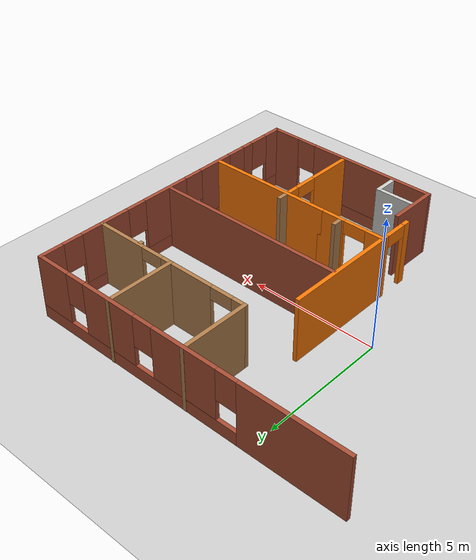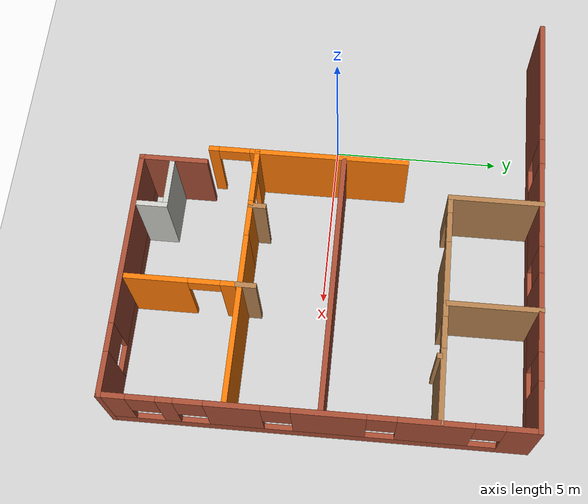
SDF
<sdf version="1.6">
 <world name="default">
  <model name="ground_plane">
   <static>1</static>
   <link name="link">
    <collision name="collision">
     <geometry><plane><normal>0 0 1</normal><size>100 100</size></plane></geometry>
     <surface><friction><ode><mu>100</mu><mu2>50</mu2></ode></friction></surface>
    </collision>
    <visual name="visual">
     <cast_shadows>0</cast_shadows>
     <geometry><plane><normal>0 0 1</normal><size>100 100</size></plane></geometry>
     <material>
      <script><uri>file://media/materials/scripts/gazebo.material</uri><name>Gazebo/Grey</name></script>
     </material>
    </visual>
   </link>
  </model>
  <model name="office">
   <pose>0.904802 0.213699 0 0 -0 0</pose>
   <link name="Wall_14">
    <pose>1.80043 5.84251 0 0 -0 0</pose>
    <visual name="Wall_14_Visual_0">
     <pose>-4.36709 0 1.25 0 -0 0</pose>
     <geometry><box><size>4.01582 0.15 2.5</size></box></geometry>
     <material>
      <script><uri>file://media/materials/scripts/gazebo.material</uri><name>Gazebo/Bricks</name></script>
      <ambient>1 1 1 1</ambient>
     </material>
     <meta><layer>0</layer></meta>
    </visual>
    <collision name="Wall_14_Collision_0">
     <geometry><box><size>4.01582 0.15 2.5</size></box></geometry>
     <pose>-4.36709 0 1.25 0 -0 0</pose>
    </collision>
    <visual name="Wall_14_Visual_1">
     <pose>2.00791 0 0.25 0 -0 0</pose>
     <geometry><box><size>8.73418 0.15 0.5</size></box></geometry>
     <material>
      <script><uri>file://media/materials/scripts/gazebo.material</uri><name>Gazebo/Bricks</name></script>
      <ambient>1 1 1 1</ambient>
     </material>
     <meta><layer>0</layer></meta>
    </visual>
    <collision name="Wall_14_Collision_1">
     <geometry><box><size>8.73418 0.15 0.5</size></box></geometry>
     <pose>2.00791 0 0.25 0 -0 0</pose>
    </collision>
    <visual name="Wall_14_Visual_2">
     <pose>-0.245155 0 1.5 0 -0 0</pose>
     <geometry><box><size>2.62805 0.15 2</size></box></geometry>
     <material>
      <script><uri>file://media/materials/scripts/gazebo.material</uri><name>Gazebo/Bricks</name></script>
      <ambient>1 1 1 1</ambient>
     </material>
     <meta><layer>0</layer></meta>
    </visual>
    <collision name="Wall_14_Collision_2">
     <geometry><box><size>2.62805 0.15 2</size></box></geometry>
     <pose>-0.245155 0 1.5 0 -0 0</pose>
    </collision>
    <visual name="Wall_14_Visual_3">
     <pose>3.008 0 1.5 0 -0 0</pose>
     <geometry><box><size>2.27825 0.15 2</size></box></geometry>
     <material>
      <script><uri>file://media/materials/scripts/gazebo.material</uri><name>Gazebo/Bricks</name></script>
      <ambient>1 1 1 1</ambient>
     </material>
     <meta><layer>0</layer></meta>
    </visual>
    <collision name="Wall_14_Collision_3">
     <geometry><box><size>2.27825 0.15 2</size></box></geometry>
     <pose>3.008 0 1.5 0 -0 0</pose>
    </collision>
    <visual name="Wall_14_Visual_4">
     <pose>5.66106 0 1.5 0 -0 0</pose>
     <geometry><box><size>1.42788 0.15 2</size></box></geometry>
     <material>
      <script><uri>file://media/materials/scripts/gazebo.material</uri><name>Gazebo/Bricks</name></script>
      <ambient>1 1 1 1</ambient>
     </material>
     <meta><layer>0</layer></meta>
    </visual>
    <collision name="Wall_14_Collision_4">
     <geometry><box><size>1.42788 0.15 2</size></box></geometry>
     <pose>5.66106 0 1.5 0 -0 0</pose>
    </collision>
    <visual name="Wall_14_Visual_5">
     <pose>-1.95918 0 1.9 0 -0 0</pose>
     <geometry><box><size>0.8 0.15 1.2</size></box></geometry>
     <material>
      <script><uri>file://media/materials/scripts/gazebo.material</uri><name>Gazebo/Bricks</name></script>
      <ambient>1 1 1 1</ambient>
     </material>
     <meta><layer>0</layer></meta>
    </visual>
    <collision name="Wall_14_Collision_5">
     <geometry><box><size>0.8 0.15 1.2</size></box></geometry>
     <pose>-1.95918 0 1.9 0 -0 0</pose>
    </collision>
    <visual name="Wall_14_Visual_6">
     <pose>1.46887 0 1.9 0 -0 0</pose>
     <geometry><box><size>0.8 0.15 1.2</size></box></geometry>
     <material>
      <script><uri>file://media/materials/scripts/gazebo.material</uri><name>Gazebo/Bricks</name></script>
      <ambient>1 1 1 1</ambient>
     </material>
     <meta><layer>0</layer></meta>
    </visual>
    <collision name="Wall_14_Collision_6">
     <geometry><box><size>0.8 0.15 1.2</size></box></geometry>
     <pose>1.46887 0 1.9 0 -0 0</pose>
    </collision>
    <visual name="Wall_14_Visual_7">
     <pose>4.54712 0 1.9 0 -0 0</pose>
     <geometry><box><size>0.8 0.15 1.2</size></box></geometry>
     <material>
      <script><uri>file://media/materials/scripts/gazebo.material</uri><name>Gazebo/Bricks</name></script>
      <ambient>1 1 1 1</ambient>
     </material>
     <meta><layer>0</layer></meta>
    </visual>
    <collision name="Wall_14_Collision_7">
     <geometry><box><size>0.8 0.15 1.2</size></box></geometry>
     <pose>4.54712 0 1.9 0 -0 0</pose>
    </collision>
   </link>
   <link name="Wall_15">
    <pose>8.10043 0.042507 0 0 0 -1.5708</pose>
    <visual name="Wall_15_Visual_0">
     <pose>-5.39213 0 1.25 0 -0 0</pose>
     <geometry><box><size>0.965738 0.15 2.5</size></box></geometry>
     <material>
      <script><uri>file://media/materials/scripts/gazebo.material</uri><name>Gazebo/Bricks</name></script>
      <ambient>1 1 1 1</ambient>
     </material>
     <meta><layer>0</layer></meta>
    </visual>
    <collision name="Wall_15_Collision_0">
     <geometry><box><size>0.965738 0.15 2.5</size></box></geometry>
     <pose>-5.39213 0 1.25 0 -0 0</pose>
    </collision>
    <visual name="Wall_15_Visual_1">
     <pose>0.482869 0 0.25 0 -0 0</pose>
     <geometry><box><size>10.7843 0.15 0.5</size></box></geometry>
     <material>
      <script><uri>file://media/materials/scripts/gazebo.material</uri><name>Gazebo/Bricks</name></script>
      <ambient>1 1 1 1</ambient>
     </material>
     <meta><layer>0</layer></meta>
    </visual>
    <collision name="Wall_15_Collision_1">
     <geometry><box><size>10.7843 0.15 0.5</size></box></geometry>
     <pose>0.482869 0 0.25 0 -0 0</pose>
    </collision>
    <visual name="Wall_15_Visual_2">
     <pose>-3.09257 0 1.5 0 -0 0</pose>
     <geometry><box><size>2.03339 0.15 2</size></box></geometry>
     <material>
      <script><uri>file://media/materials/scripts/gazebo.material</uri><name>Gazebo/Bricks</name></script>
      <ambient>1 1 1 1</ambient>
     </material>
     <meta><layer>0</layer></meta>
    </visual>
    <collision name="Wall_15_Collision_2">
     <geometry><box><size>2.03339 0.15 2</size></box></geometry>
     <pose>-3.09257 0 1.5 0 -0 0</pose>
    </collision>
    <visual name="Wall_15_Visual_3">
     <pose>-0.276667 0 1.5 0 -0 0</pose>
     <geometry><box><size>1.99841 0.15 2</size></box></geometry>
     <material>
      <script><uri>file://media/materials/scripts/gazebo.material</uri><name>Gazebo/Bricks</name></script>
      <ambient>1 1 1 1</ambient>
     </material>
     <meta><layer>0</layer></meta>
    </visual>
    <collision name="Wall_15_Collision_3">
     <geometry><box><size>1.99841 0.15 2</size></box></geometry>
     <pose>-0.276667 0 1.5 0 -0 0</pose>
    </collision>
    <visual name="Wall_15_Visual_4">
     <pose>2.27688 0 1.5 0 -0 0</pose>
     <geometry><box><size>1.50869 0.15 2</size></box></geometry>
     <material>
      <script><uri>file://media/materials/scripts/gazebo.material</uri><name>Gazebo/Bricks</name></script>
      <ambient>1 1 1 1</ambient>
     </material>
     <meta><layer>0</layer></meta>
    </visual>
    <collision name="Wall_15_Collision_4">
     <geometry><box><size>1.50869 0.15 2</size></box></geometry>
     <pose>2.27688 0 1.5 0 -0 0</pose>
    </collision>
    <visual name="Wall_15_Visual_5">
     <pose>4.06087 0 1.5 0 -0 0</pose>
     <geometry><box><size>0.459284 0.15 2</size></box></geometry>
     <material>
      <script><uri>file://media/materials/scripts/gazebo.material</uri><name>Gazebo/Bricks</name></script>
      <ambient>1 1 1 1</ambient>
     </material>
     <meta><layer>0</layer></meta>
    </visual>
    <collision name="Wall_15_Collision_5">
     <geometry><box><size>0.459284 0.15 2</size></box></geometry>
     <pose>4.06087 0 1.5 0 -0 0</pose>
    </collision>
    <visual name="Wall_15_Visual_6">
     <pose>5.48276 0 1.5 0 -0 0</pose>
     <geometry><box><size>0.784489 0.15 2</size></box></geometry>
     <material>
      <script><uri>file://media/materials/scripts/gazebo.material</uri><name>Gazebo/Bricks</name></script>
      <ambient>1 1 1 1</ambient>
     </material>
     <meta><layer>0</layer></meta>
    </visual>
    <collision name="Wall_15_Collision_6">
     <geometry><box><size>0.784489 0.15 2</size></box></geometry>
     <pose>5.48276 0 1.5 0 -0 0</pose>
    </collision>
    <visual name="Wall_15_Visual_7">
     <pose>-4.50926 0 1.9 0 -0 0</pose>
     <geometry><box><size>0.8 0.15 1.2</size></box></geometry>
     <material>
      <script><uri>file://media/materials/scripts/gazebo.material</uri><name>Gazebo/Bricks</name></script>
      <ambient>1 1 1 1</ambient>
     </material>
     <meta><layer>0</layer></meta>
    </visual>
    <collision name="Wall_15_Collision_7">
     <geometry><box><size>0.8 0.15 1.2</size></box></geometry>
     <pose>-4.50926 0 1.9 0 -0 0</pose>
    </collision>
    <visual name="Wall_15_Visual_8">
     <pose>-1.67587 0 1.9 0 -0 0</pose>
     <geometry><box><size>0.8 0.15 1.2</size></box></geometry>
     <material>
      <script><uri>file://media/materials/scripts/gazebo.material</uri><name>Gazebo/Bricks</name></script>
      <ambient>1 1 1 1</ambient>
     </material>
     <meta><layer>0</layer></meta>
    </visual>
    <collision name="Wall_15_Collision_8">
     <geometry><box><size>0.8 0.15 1.2</size></box></geometry>
     <pose>-1.67587 0 1.9 0 -0 0</pose>
    </collision>
    <visual name="Wall_15_Visual_9">
     <pose>1.12254 0 1.9 0 -0 0</pose>
     <geometry><box><size>0.8 0.15 1.2</size></box></geometry>
     <material>
      <script><uri>file://media/materials/scripts/gazebo.material</uri><name>Gazebo/Bricks</name></script>
      <ambient>1 1 1 1</ambient>
     </material>
     <meta><layer>0</layer></meta>
    </visual>
    <collision name="Wall_15_Collision_9">
     <geometry><box><size>0.8 0.15 1.2</size></box></geometry>
     <pose>1.12254 0 1.9 0 -0 0</pose>
    </collision>
    <visual name="Wall_15_Visual_10">
     <pose>3.43123 0 1.9 0 -0 0</pose>
     <geometry><box><size>0.8 0.15 1.2</size></box></geometry>
     <material>
      <script><uri>file://media/materials/scripts/gazebo.material</uri><name>Gazebo/Bricks</name></script>
      <ambient>1 1 1 1</ambient>
     </material>
     <meta><layer>0</layer></meta>
    </visual>
    <collision name="Wall_15_Collision_10">
     <geometry><box><size>0.8 0.15 1.2</size></box></geometry>
     <pose>3.43123 0 1.9 0 -0 0</pose>
    </collision>
    <visual name="Wall_15_Visual_11">
     <pose>4.69051 0 1.9 0 -0 0</pose>
     <geometry><box><size>0.8 0.15 1.2</size></box></geometry>
     <material>
      <script><uri>file://media/materials/scripts/gazebo.material</uri><name>Gazebo/Bricks</name></script>
      <ambient>1 1 1 1</ambient>
     </material>
     <meta><layer>0</layer></meta>
    </visual>
    <collision name="Wall_15_Collision_11">
     <geometry><box><size>0.8 0.15 1.2</size></box></geometry>
     <pose>4.69051 0 1.9 0 -0 0</pose>
    </collision>
   </link>
   <link name="Wall_21">
    <pose>4.55043 -5.75749 0 0 -0 3.14159</pose>
    <visual name="Wall_21_Visual_0">
     <pose>-2.99851 0 1.25 0 -0 0</pose>
     <geometry><box><size>1.25298 0.15 2.5</size></box></geometry>
     <material>
      <script><uri>file://media/materials/scripts/gazebo.material</uri><name>Gazebo/Bricks</name></script>
      <ambient>1 1 1 1</ambient>
     </material>
     <meta><layer>0</layer></meta>
    </visual>
    <collision name="Wall_21_Collision_0">
     <geometry><box><size>1.25298 0.15 2.5</size></box></geometry>
     <pose>-2.99851 0 1.25 0 -0 0</pose>
    </collision>
    <visual name="Wall_21_Visual_1">
     <pose>0.626488 0 0.25 0 -0 0</pose>
     <geometry><box><size>5.99702 0.15 0.5</size></box></geometry>
     <material>
      <script><uri>file://media/materials/scripts/gazebo.material</uri><name>Gazebo/Bricks</name></script>
      <ambient>1 1 1 1</ambient>
     </material>
     <meta><layer>0</layer></meta>
    </visual>
    <collision name="Wall_21_Collision_1">
     <geometry><box><size>5.99702 0.15 0.5</size></box></geometry>
     <pose>0.626488 0 0.25 0 -0 0</pose>
    </collision>
    <visual name="Wall_21_Visual_2">
     <pose>1.02649 0 1.5 0 -0 0</pose>
     <geometry><box><size>5.19702 0.15 2</size></box></geometry>
     <material>
      <script><uri>file://media/materials/scripts/gazebo.material</uri><name>Gazebo/Bricks</name></script>
      <ambient>1 1 1 1</ambient>
     </material>
     <meta><layer>0</layer></meta>
    </visual>
    <collision name="Wall_21_Collision_2">
     <geometry><box><size>5.19702 0.15 2</size></box></geometry>
     <pose>1.02649 0 1.5 0 -0 0</pose>
    </collision>
    <visual name="Wall_21_Visual_3">
     <pose>-1.97202 0 1.9 0 -0 0</pose>
     <geometry><box><size>0.8 0.15 1.2</size></box></geometry>
     <material>
      <script><uri>file://media/materials/scripts/gazebo.material</uri><name>Gazebo/Bricks</name></script>
      <ambient>1 1 1 1</ambient>
     </material>
     <meta><layer>0</layer></meta>
    </visual>
    <collision name="Wall_21_Collision_3">
     <geometry><box><size>0.8 0.15 1.2</size></box></geometry>
     <pose>-1.97202 0 1.9 0 -0 0</pose>
    </collision>
   </link>
   <link name="Wall_22">
    <collision name="Wall_22_Collision">
     <geometry><box><size>2 0.15 2.5</size></box></geometry>
     <pose>0 0 1.25 0 -0 0</pose>
    </collision>
    <visual name="Wall_22_Visual">
     <pose>0 0 1.25 0 -0 0</pose>
     <geometry><box><size>2 0.15 2.5</size></box></geometry>
     <material>
      <script><uri>file://media/materials/scripts/gazebo.material</uri><name>Gazebo/Bricks</name></script>
      <ambient>1 1 1 1</ambient>
     </material>
     <meta><layer>0</layer></meta>
    </visual>
    <pose>1.00043 -4.83249 0 0 -0 1.5708</pose>
   </link>
   <link name="Wall_34">
    <collision name="Wall_34_Collision">
     <geometry><box><size>4.5 0.15 2.5</size></box></geometry>
     <pose>0 0 1.25 0 -0 0</pose>
    </collision>
    <visual name="Wall_34_Visual">
     <pose>0 0 1.25 0 -0 0</pose>
     <geometry><box><size>4.5 0.15 2.5</size></box></geometry>
     <material>
      <script><uri>file://media/materials/scripts/gazebo.material</uri><name>Gazebo/Grey</name></script>
      <ambient>0.996078 0.47451 0.0196078 1</ambient>
     </material>
     <meta><layer>0</layer></meta>
    </visual>
    <pose>0.554111 -0.259019 0 0 -0 1.57084</pose>
   </link>
   <link name="Wall_39">
    <pose>1.85421 -2.43396 0 0 -0 0</pose>
    <visual name="Wall_39_Visual_0">
     <pose>-0.992004 0 1.25 0 -0 0</pose>
     <geometry><box><size>0.765991 0.15 2.5</size></box></geometry>
     <material>
      <script><uri>file://media/materials/scripts/gazebo.material</uri><name>Gazebo/Grey</name></script>
      <ambient>0.996078 0.47451 0.0196078 1</ambient>
     </material>
     <meta><layer>0</layer></meta>
    </visual>
    <collision name="Wall_39_Collision_0">
     <geometry><box><size>0.765991 0.15 2.5</size></box></geometry>
     <pose>-0.992004 0 1.25 0 -0 0</pose>
    </collision>
    <visual name="Wall_39_Visual_1">
     <pose>0.832996 0 1.25 0 -0 0</pose>
     <geometry><box><size>1.08401 0.15 2.5</size></box></geometry>
     <material>
      <script><uri>file://media/materials/scripts/gazebo.material</uri><name>Gazebo/Grey</name></script>
      <ambient>0.996078 0.47451 0.0196078 1</ambient>
     </material>
     <meta><layer>0</layer></meta>
    </visual>
    <collision name="Wall_39_Collision_1">
     <geometry><box><size>1.08401 0.15 2.5</size></box></geometry>
     <pose>0.832996 0 1.25 0 -0 0</pose>
    </collision>
    <visual name="Wall_39_Visual_2">
     <pose>-0.159009 0 2.25 0 -0 0</pose>
     <geometry><box><size>0.9 0.15 0.5</size></box></geometry>
     <material>
      <script><uri>file://media/materials/scripts/gazebo.material</uri><name>Gazebo/Grey</name></script>
      <ambient>0.996078 0.47451 0.0196078 1</ambient>
     </material>
     <meta><layer>0</layer></meta>
    </visual>
    <collision name="Wall_39_Collision_2">
     <geometry><box><size>0.9 0.15 0.5</size></box></geometry>
     <pose>-0.159009 0 2.25 0 -0 0</pose>
    </collision>
   </link>
   <link name="Wall_40">
    <collision name="Wall_40_Collision">
     <geometry><box><size>5 0.15 2.5</size></box></geometry>
     <pose>0 0 1.25 0 -0 0</pose>
    </collision>
    <visual name="Wall_40_Visual">
     <pose>0 0 1.25 0 -0 0</pose>
     <geometry><box><size>5 0.15 2.5</size></box></geometry>
     <material>
      <script><uri>file://media/materials/scripts/gazebo.material</uri><name>Gazebo/Grey</name></script>
      <ambient>0.996078 0.47451 0.0196078 1</ambient>
     </material>
     <meta><layer>0</layer></meta>
    </visual>
    <pose>5.5792 -2.43396 0 0 -0 0</pose>
   </link>
   <link name="Wall_42">
    <pose>4.72121 -4.04494 0 0 0 -1.57067</pose>
    <visual name="Wall_42_Visual_0">
     <pose>-1.34812 0 1.25 0 -0 0</pose>
     <geometry><box><size>0.553762 0.15 2.5</size></box></geometry>
     <material>
      <script><uri>file://media/materials/scripts/gazebo.material</uri><name>Gazebo/Grey</name></script>
      <ambient>0.996078 0.47451 0.0196078 1</ambient>
     </material>
     <meta><layer>0</layer></meta>
    </visual>
    <collision name="Wall_42_Collision_0">
     <geometry><box><size>0.553762 0.15 2.5</size></box></geometry>
     <pose>-1.34812 0 1.25 0 -0 0</pose>
    </collision>
    <visual name="Wall_42_Visual_1">
     <pose>0.726881 0 1.25 0 -0 0</pose>
     <geometry><box><size>1.79624 0.15 2.5</size></box></geometry>
     <material>
      <script><uri>file://media/materials/scripts/gazebo.material</uri><name>Gazebo/Grey</name></script>
      <ambient>0.996078 0.47451 0.0196078 1</ambient>
     </material>
     <meta><layer>0</layer></meta>
    </visual>
    <collision name="Wall_42_Collision_1">
     <geometry><box><size>1.79624 0.15 2.5</size></box></geometry>
     <pose>0.726881 0 1.25 0 -0 0</pose>
    </collision>
    <visual name="Wall_42_Visual_2">
     <pose>-0.621238 0 2.25 0 -0 0</pose>
     <geometry><box><size>0.9 0.15 0.5</size></box></geometry>
     <material>
      <script><uri>file://media/materials/scripts/gazebo.material</uri><name>Gazebo/Grey</name></script>
      <ambient>0.996078 0.47451 0.0196078 1</ambient>
     </material>
     <meta><layer>0</layer></meta>
    </visual>
    <collision name="Wall_42_Collision_2">
     <geometry><box><size>0.9 0.15 0.5</size></box></geometry>
     <pose>-0.621238 0 2.25 0 -0 0</pose>
    </collision>
   </link>
   <link name="Wall_44">
    <collision name="Wall_44_Collision">
     <geometry><box><size>7.5 0.15 2.5</size></box></geometry>
     <pose>0 0 1.25 0 -0 0</pose>
    </collision>
    <visual name="Wall_44_Visual">
     <pose>0 0 1.25 0 -0 0</pose>
     <geometry><box><size>7.5 0.15 2.5</size></box></geometry>
     <material>
      <script><uri>file://media/materials/scripts/gazebo.material</uri><name>Gazebo/Bricks</name></script>
      <ambient>0.996078 0.47451 0.0196078 1</ambient>
     </material>
     <meta><layer>0</layer></meta>
    </visual>
    <pose>4.32079 0.109293 0 0 -0 0</pose>
   </link>
   <link name="Wall_48">
    <pose>0.554205 -3.10896 0 0 0 -1.5708</pose>
    <visual name="Wall_48_Visual_0">
     <pose>-0.600039 0 1.25 0 -0 0</pose>
     <geometry><box><size>0.299922 0.15 2.5</size></box></geometry>
     <material>
      <script><uri>file://media/materials/scripts/gazebo.material</uri><name>Gazebo/Grey</name></script>
      <ambient>0.996078 0.47451 0.0196078 1</ambient>
     </material>
     <meta><layer>0</layer></meta>
    </visual>
    <collision name="Wall_48_Collision_0">
     <geometry><box><size>0.299922 0.15 2.5</size></box></geometry>
     <pose>-0.600039 0 1.25 0 -0 0</pose>
    </collision>
    <visual name="Wall_48_Visual_1">
     <pose>0.599961 0 1.25 0 -0 0</pose>
     <geometry><box><size>0.300078 0.15 2.5</size></box></geometry>
     <material>
      <script><uri>file://media/materials/scripts/gazebo.material</uri><name>Gazebo/Grey</name></script>
      <ambient>0.996078 0.47451 0.0196078 1</ambient>
     </material>
     <meta><layer>0</layer></meta>
    </visual>
    <collision name="Wall_48_Collision_1">
     <geometry><box><size>0.300078 0.15 2.5</size></box></geometry>
     <pose>0.599961 0 1.25 0 -0 0</pose>
    </collision>
    <visual name="Wall_48_Visual_2">
     <pose>-7.8e-05 0 2.25 0 -0 0</pose>
     <geometry><box><size>0.9 0.15 0.5</size></box></geometry>
     <material>
      <script><uri>file://media/materials/scripts/gazebo.material</uri><name>Gazebo/Grey</name></script>
      <ambient>0.996078 0.47451 0.0196078 1</ambient>
     </material>
     <meta><layer>0</layer></meta>
    </visual>
    <collision name="Wall_48_Collision_2">
     <geometry><box><size>0.9 0.15 0.5</size></box></geometry>
     <pose>-7.8e-05 0 2.25 0 -0 0</pose>
    </collision>
   </link>
   <link name="Wall_53">
    <collision name="Wall_53_Collision">
     <geometry><box><size>0.15 0.15 2.5</size></box></geometry>
     <pose>0 0 1.25 0 -0 0</pose>
    </collision>
    <visual name="Wall_53_Visual">
     <pose>0 0 1.25 0 -0 0</pose>
     <geometry><box><size>0.15 0.15 2.5</size></box></geometry>
     <material>
      <script><uri>file://media/materials/scripts/gazebo.material</uri><name>Gazebo/Wood</name></script>
      <ambient>1 1 1 1</ambient>
     </material>
     <meta><layer>0</layer></meta>
    </visual>
    <pose>6.28571 3.14109 0 0 -0 0</pose>
   </link>
   <link name="Wall_55">
    <collision name="Wall_55_Collision">
     <geometry><box><size>2.75 0.15 2.5</size></box></geometry>
     <pose>0 0 1.25 0 -0 0</pose>
    </collision>
    <visual name="Wall_55_Visual">
     <pose>0 0 1.25 0 -0 0</pose>
     <geometry><box><size>2.75 0.15 2.5</size></box></geometry>
     <material>
      <script><uri>file://media/materials/scripts/gazebo.material</uri><name>Gazebo/Wood</name></script>
      <ambient>1 1 1 1</ambient>
     </material>
     <meta><layer>0</layer></meta>
    </visual>
    <pose>1.55515 4.54598 0 0 0 -1.57089</pose>
   </link>
   <link name="Wall_56">
    <pose>4.81502 3.24592 0 0 -0 0</pose>
    <visual name="Wall_56_Visual_0">
     <pose>-3.05014 0 1.25 0 -0 0</pose>
     <geometry><box><size>0.569721 0.15 2.5</size></box></geometry>
     <material>
      <script><uri>file://media/materials/scripts/gazebo.material</uri><name>Gazebo/Wood</name></script>
      <ambient>1 1 1 1</ambient>
     </material>
     <meta><layer>0</layer></meta>
    </visual>
    <collision name="Wall_56_Collision_0">
     <geometry><box><size>0.569721 0.15 2.5</size></box></geometry>
     <pose>-3.05014 0 1.25 0 -0 0</pose>
    </collision>
    <visual name="Wall_56_Visual_1">
     <pose>-0.758663 0 1.25 0 -0 0</pose>
     <geometry><box><size>2.21323 0.15 2.5</size></box></geometry>
     <material>
      <script><uri>file://media/materials/scripts/gazebo.material</uri><name>Gazebo/Wood</name></script>
      <ambient>1 1 1 1</ambient>
     </material>
     <meta><layer>0</layer></meta>
    </visual>
    <collision name="Wall_56_Collision_1">
     <geometry><box><size>2.21323 0.15 2.5</size></box></geometry>
     <pose>-0.758663 0 1.25 0 -0 0</pose>
    </collision>
    <visual name="Wall_56_Visual_2">
     <pose>2.29148 0 1.25 0 -0 0</pose>
     <geometry><box><size>2.08705 0.15 2.5</size></box></geometry>
     <material>
      <script><uri>file://media/materials/scripts/gazebo.material</uri><name>Gazebo/Wood</name></script>
      <ambient>1 1 1 1</ambient>
     </material>
     <meta><layer>0</layer></meta>
    </visual>
    <collision name="Wall_56_Collision_2">
     <geometry><box><size>2.08705 0.15 2.5</size></box></geometry>
     <pose>2.29148 0 1.25 0 -0 0</pose>
    </collision>
    <visual name="Wall_56_Visual_3">
     <pose>-2.31528 0 2.25 0 -0 0</pose>
     <geometry><box><size>0.9 0.15 0.5</size></box></geometry>
     <material>
      <script><uri>file://media/materials/scripts/gazebo.material</uri><name>Gazebo/Wood</name></script>
      <ambient>1 1 1 1</ambient>
     </material>
     <meta><layer>0</layer></meta>
    </visual>
    <collision name="Wall_56_Collision_3">
     <geometry><box><size>0.9 0.15 0.5</size></box></geometry>
     <pose>-2.31528 0 2.25 0 -0 0</pose>
    </collision>
    <visual name="Wall_56_Visual_4">
     <pose>0.797952 0 2.25 0 -0 0</pose>
     <geometry><box><size>0.9 0.15 0.5</size></box></geometry>
     <material>
      <script><uri>file://media/materials/scripts/gazebo.material</uri><name>Gazebo/Wood</name></script>
      <ambient>1 1 1 1</ambient>
     </material>
     <meta><layer>0</layer></meta>
    </visual>
    <collision name="Wall_56_Collision_4">
     <geometry><box><size>0.9 0.15 0.5</size></box></geometry>
     <pose>0.797952 0 2.25 0 -0 0</pose>
    </collision>
   </link>
   <link name="Wall_58">
    <collision name="Wall_58_Collision">
     <geometry><box><size>2.75 0.15 2.5</size></box></geometry>
     <pose>0 0 1.25 0 -0 0</pose>
    </collision>
    <visual name="Wall_58_Visual">
     <pose>0 0 1.25 0 -0 0</pose>
     <geometry><box><size>2.75 0.15 2.5</size></box></geometry>
     <material>
      <script><uri>file://media/materials/scripts/gazebo.material</uri><name>Gazebo/Wood</name></script>
      <ambient>1 1 1 1</ambient>
     </material>
     <meta><layer>0</layer></meta>
    </visual>
    <pose>4.77345 4.5575 0 0 -0 1.5708</pose>
   </link>
   <link name="Wall_62">
    <collision name="Wall_62_Collision">
     <geometry><box><size>1.5 0.15 2.5</size></box></geometry>
     <pose>0 0 1.25 0 -0 0</pose>
    </collision>
    <visual name="Wall_62_Visual">
     <pose>0 0 1.25 0 -0 0</pose>
     <geometry><box><size>1.5 0.15 2.5</size></box></geometry>
     <material>
      <script><uri>file://media/materials/scripts/gazebo.material</uri><name>Gazebo/CeilingTiled</name></script>
      <ambient>1 1 1 1</ambient>
     </material>
     <meta><layer>0</layer></meta>
    </visual>
    <pose>1.81051 -4.85788 0 0 -0 0</pose>
   </link>
   <link name="Wall_63">
    <collision name="Wall_63_Collision">
     <geometry><box><size>1 0.15 2.5</size></box></geometry>
     <pose>0 0 1.25 0 -0 0</pose>
    </collision>
    <visual name="Wall_63_Visual">
     <pose>0 0 1.25 0 -0 0</pose>
     <geometry><box><size>1 0.15 2.5</size></box></geometry>
     <material>
      <script><uri>file://media/materials/scripts/gazebo.material</uri><name>Gazebo/CeilingTiled</name></script>
      <ambient>1 1 1 1</ambient>
     </material>
     <meta><layer>0</layer></meta>
    </visual>
    <pose>2.48551 -5.28289 0 0 0 -1.5708</pose>
   </link>
   <link name="Wall_65">
    <collision name="Wall_65_Collision">
     <geometry><box><size>0.5 0.15 2.5</size></box></geometry>
     <pose>0 0 1.25 0 -0 0</pose>
    </collision>
    <visual name="Wall_65_Visual">
     <pose>0 0 1.25 0 -0 0</pose>
     <geometry><box><size>0.5 0.15 2.5</size></box></geometry>
     <material>
      <script><uri>file://media/materials/scripts/gazebo.material</uri><name>Gazebo/Wood</name></script>
      <ambient>1 1 1 1</ambient>
     </material>
     <meta><layer>0</layer></meta>
    </visual>
    <pose>2.28986 -2.23428 0 0 -0 1.5708</pose>
   </link>
   <link name="Wall_67">
    <collision name="Wall_67_Collision">
     <geometry><box><size>0.6 0.15 2.5</size></box></geometry>
     <pose>0 0 1.25 0 -0 0</pose>
    </collision>
    <visual name="Wall_67_Visual">
     <pose>0 0 1.25 0 -0 0</pose>
     <geometry><box><size>0.6 0.15 2.5</size></box></geometry>
     <material>
      <script><uri>file://media/materials/scripts/gazebo.material</uri><name>Gazebo/Wood</name></script>
      <ambient>1 1 1 1</ambient>
     </material>
     <meta><layer>0</layer></meta>
    </visual>
    <pose>4.72102 -2.27008 0 0 -0 1.5708</pose>
   </link>
   <static>1</static>
  </model>
 </world>
</sdf>
